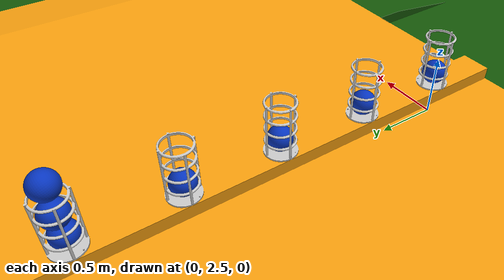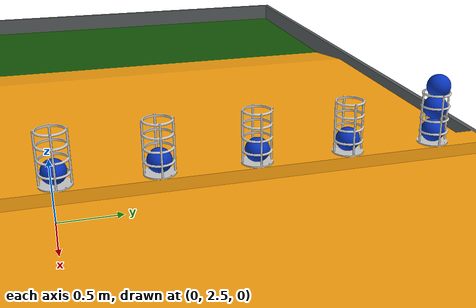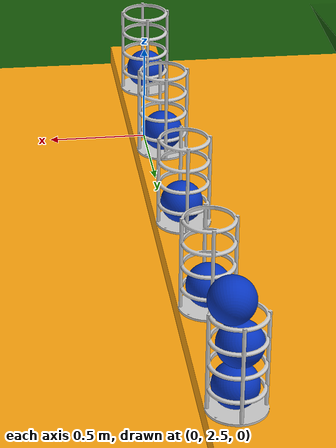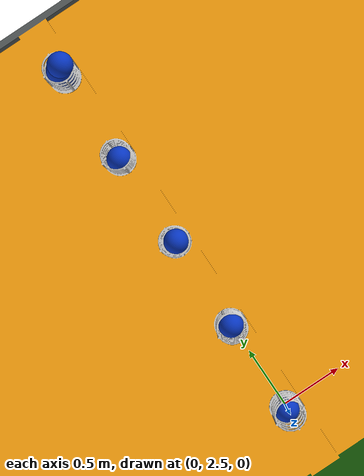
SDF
<sdf version="1.7">
 <world name="default">
  <light name="sun" type="directional">
   <pose>0 0 10 0 -0 0</pose>
   <diffuse>0.8 0.8 0.8 1</diffuse>
   <specular>0.2 0.2 0.2 1</specular>
   <attenuation>
    <range>1000</range>
    <constant>0.9</constant>
    <linear>0.01</linear>
    <quadratic>0.001</quadratic>
   </attenuation>
   <direction>-0.5 0.1 -0.9</direction>
   <spot><inner_angle>0</inner_angle><outer_angle>0</outer_angle><falloff>0</falloff></spot>
  </light>
  <model name="ground_plane">
   <static>1</static>
   <link name="link">
    <collision name="collision">
     <geometry><plane><normal>0 0 1</normal><size>100 100</size></plane></geometry>
     <surface><friction><ode><mu>100</mu><mu2>50</mu2></ode></friction></surface>
    </collision>
    <visual name="visual">
     <cast_shadows>0</cast_shadows>
     <geometry><plane><normal>0 0 1</normal><size>100 100</size></plane></geometry>
     <material>
      <script><uri>file://media/materials/scripts/gazebo.material</uri><name>Gazebo/Grey</name></script>
     </material>
    </visual>
   </link>
  </model>
  <gravity>0 0 -9.8</gravity>
  <magnetic_field>6e-06 2.3e-05 -4.2e-05</magnetic_field>
  <atmosphere type="adiabatic"/>
  <physics type="ode">
   <max_step_size>0.001</max_step_size>
   <real_time_factor>1</real_time_factor>
   <real_time_update_rate>1000</real_time_update_rate>
  </physics>
  <scene><ambient>0.4 0.4 0.4 1</ambient><background>0.7 0.7 0.7 1</background><shadows>1</shadows></scene>
  <audio><device>default</device></audio>
  <spherical_coordinates>
   <surface_model>EARTH_WGS84</surface_model>
   <latitude_deg>0</latitude_deg>
   <longitude_deg>0</longitude_deg>
   <elevation>0</elevation>
   <heading_deg>0</heading_deg>
  </spherical_coordinates>
  <model name="arena">
   <link name="base_link">
    <inertial>
     <pose>0 0.075546 -2.07458 0 -0 0</pose>
     <mass>13931.5</mass>
     <inertia>
      <ixx>19802.3</ixx>
      <ixy>-6.65987e-07</ixy>
      <ixz>-1.17319e-05</ixz>
      <iyy>173916</iyy>
      <iyz>77.5555</iyz>
      <izz>154201</izz>
     </inertia>
    </inertial>
    <collision name="base_link_collision">
     <geometry><mesh><scale>1 1 1</scale><uri>model://arena/meshes/base_link.dae</uri></mesh></geometry>
    </collision>
    <visual name="base_link_visual">
     <geometry><mesh><scale>1 1 1</scale><uri>model://arena/meshes/base_link.dae</uri></mesh></geometry>
    </visual>
   </link>
   <pose>0.000172 0.004891 -0 0 0 -2.8e-05</pose>
  </model>
  <model name="blue_ball">
   <link name="blue_ball">
    <inertial>
     <mass>3.5914</mass>
     <inertia>
      <ixx>0.012965</ixx>
      <ixy>-3.5265e-34</ixy>
      <ixz>0</ixz>
      <iyy>0.012965</iyy>
      <iyz>0</iyz>
      <izz>0.012965</izz>
     </inertia>
    </inertial>
    <collision name="blue_ball_collision">
     <geometry><mesh><scale>1 1 1</scale><uri>model://blue_ball/meshes/blue_ball.dae</uri></mesh></geometry>
    </collision>
    <visual name="blue_ball_visual">
     <geometry><mesh><scale>1 1 1</scale><uri>model://blue_ball/meshes/blue_ball.dae</uri></mesh></geometry>
    </visual>
   </link>
   <pose>0.00941 4.02949 0.404794 -2.2463 -0.100742 -1.74553</pose>
  </model>
  <model name="blue_ball_0">
   <link name="blue_ball">
    <inertial>
     <mass>3.5914</mass>
     <inertia>
      <ixx>0.012965</ixx>
      <ixy>-3.5265e-34</ixy>
      <ixz>0</ixz>
      <iyy>0.012965</iyy>
      <iyz>0</iyz>
      <izz>0.012965</izz>
     </inertia>
    </inertial>
    <collision name="blue_ball_collision">
     <geometry><mesh><scale>1 1 1</scale><uri>model://blue_ball/meshes/blue_ball.dae</uri></mesh></geometry>
    </collision>
    <visual name="blue_ball_visual">
     <geometry><mesh><scale>1 1 1</scale><uri>model://blue_ball/meshes/blue_ball.dae</uri></mesh></geometry>
    </visual>
   </link>
   <pose>-0.003107 2.52566 0.404698 2.13884 -0.624581 -1.30533</pose>
  </model>
  <model name="blue_ball_1">
   <link name="blue_ball">
    <inertial>
     <mass>3.5914</mass>
     <inertia>
      <ixx>0.012965</ixx>
      <ixy>-3.5265e-34</ixy>
      <ixz>0</ixz>
      <iyy>0.012965</iyy>
      <iyz>0</iyz>
      <izz>0.012965</izz>
     </inertia>
    </inertial>
    <collision name="blue_ball_collision">
     <geometry><mesh><scale>1 1 1</scale><uri>model://blue_ball/meshes/blue_ball.dae</uri></mesh></geometry>
    </collision>
    <visual name="blue_ball_visual">
     <geometry><mesh><scale>1 1 1</scale><uri>model://blue_ball/meshes/blue_ball.dae</uri></mesh></geometry>
    </visual>
   </link>
   <pose>0.002233 3.28115 0.404709 0.774052 -0.209136 3.088</pose>
  </model>
  <model name="blue_ball_2">
   <link name="blue_ball">
    <inertial>
     <mass>3.5914</mass>
     <inertia>
      <ixx>0.012965</ixx>
      <ixy>-3.5265e-34</ixy>
      <ixz>0</ixz>
      <iyy>0.012965</iyy>
      <iyz>0</iyz>
      <izz>0.012965</izz>
     </inertia>
    </inertial>
    <collision name="blue_ball_collision">
     <geometry><mesh><scale>1 1 1</scale><uri>model://blue_ball/meshes/blue_ball.dae</uri></mesh></geometry>
    </collision>
    <visual name="blue_ball_visual">
     <geometry><mesh><scale>1 1 1</scale><uri>model://blue_ball/meshes/blue_ball.dae</uri></mesh></geometry>
    </visual>
   </link>
   <pose>-0.001249 4.77748 0.404631 -2.75655 0.208445 0.196749</pose>
  </model>
  <model name="blue_ball_3">
   <link name="blue_ball">
    <inertial>
     <mass>3.5914</mass>
     <inertia>
      <ixx>0.012965</ixx>
      <ixy>-3.5265e-34</ixy>
      <ixz>0</ixz>
      <iyy>0.012965</iyy>
      <iyz>0</iyz>
      <izz>0.012965</izz>
     </inertia>
    </inertial>
    <collision name="blue_ball_collision">
     <geometry><mesh><scale>1 1 1</scale><uri>model://blue_ball/meshes/blue_ball.dae</uri></mesh></geometry>
    </collision>
    <visual name="blue_ball_visual">
     <geometry><mesh><scale>1 1 1</scale><uri>model://blue_ball/meshes/blue_ball.dae</uri></mesh></geometry>
    </visual>
   </link>
   <pose>0.005445 5.52409 0.404674 -0.667682 -0.682714 -2.25747</pose>
  </model>
  <model name="blue_ball_4">
   <link name="blue_ball">
    <inertial>
     <mass>3.5914</mass>
     <inertia>
      <ixx>0.012965</ixx>
      <ixy>-3.5265e-34</ixy>
      <ixz>0</ixz>
      <iyy>0.012965</iyy>
      <iyz>0</iyz>
      <izz>0.012965</izz>
     </inertia>
    </inertial>
    <collision name="blue_ball_collision">
     <geometry><mesh><scale>1 1 1</scale><uri>model://blue_ball/meshes/blue_ball.dae</uri></mesh></geometry>
    </collision>
    <visual name="blue_ball_visual">
     <geometry><mesh><scale>1 1 1</scale><uri>model://blue_ball/meshes/blue_ball.dae</uri></mesh></geometry>
    </visual>
   </link>
   <pose>-0.005357 5.53421 0.593717 0.61031 0.337729 0.568644</pose>
  </model>
  <model name="blue_ball_5">
   <link name="blue_ball">
    <inertial>
     <mass>3.5914</mass>
     <inertia>
      <ixx>0.012965</ixx>
      <ixy>-3.5265e-34</ixy>
      <ixz>0</ixz>
      <iyy>0.012965</iyy>
      <iyz>0</iyz>
      <izz>0.012965</izz>
     </inertia>
    </inertial>
    <collision name="blue_ball_collision">
     <geometry><mesh><scale>1 1 1</scale><uri>model://blue_ball/meshes/blue_ball.dae</uri></mesh></geometry>
    </collision>
    <visual name="blue_ball_visual">
     <geometry><mesh><scale>1 1 1</scale><uri>model://blue_ball/meshes/blue_ball.dae</uri></mesh></geometry>
    </visual>
   </link>
   <pose>0.02868 5.52769 0.780036 -0.575787 -0.819433 0.342196</pose>
  </model>
 </world>
</sdf>
